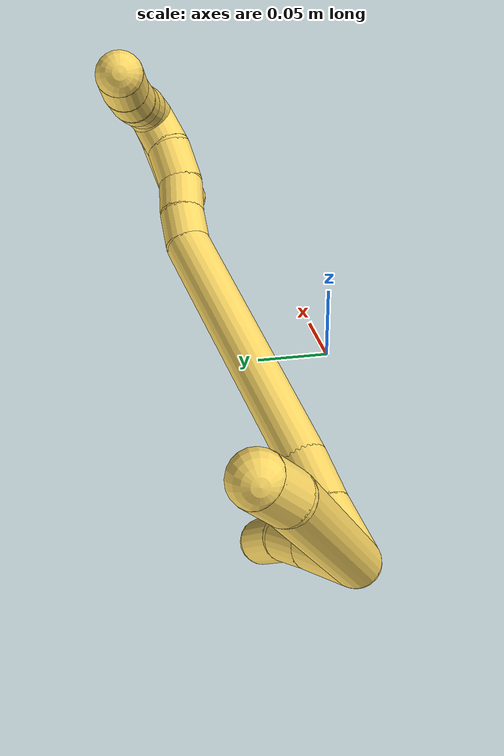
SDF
<sdf version="1.7">
 <world name="default">
  <model name="5">
   <static>0</static>
   <link name="5">
    <collision name="collision-cylinder-e_1_2_8">
     <pose>0.029607 0.025002 0.050498 -0.459725 0.483779 -0.115336</pose>
     <geometry><cylinder><radius>0.0125</radius><length>0.127305</length></cylinder></geometry>
     <surface>
      <friction><ode><mu>1.16</mu><mu2>1.16</mu2><slip1>0</slip1><slip2>0</slip2></ode></friction>
      <contact><ode><kp>1e+06</kp><kd>1</kd><max_vel>0</max_vel><min_depth>0.001</min_depth></ode></contact>
     </surface>
    </collision>
    <visual name="visual-cylinder-e_1_2_8">
     <pose>0.029607 0.025002 0.050498 -0.459725 0.483779 -0.115336</pose>
     <geometry><cylinder><radius>0.0125</radius><length>0.127305</length></cylinder></geometry>
     <material><ambient>1 0.858824 0.4 1</ambient></material>
    </visual>
    <collision name="collision-cylinder-e_2_8_6">
     <pose>0.064597 0.056957 0.108167 -0.76997 0.494383 -0.2038</pose>
     <geometry><cylinder><radius>0.0125</radius><length>0.022695</length></cylinder></geometry>
     <surface>
      <friction><ode><mu>1.16</mu><mu2>1.16</mu2><slip1>0</slip1><slip2>0</slip2></ode></friction>
      <contact><ode><kp>1e+06</kp><kd>1</kd><max_vel>0</max_vel><min_depth>0.001</min_depth></ode></contact>
     </surface>
    </collision>
    <visual name="visual-cylinder-e_2_8_6">
     <pose>0.064597 0.056957 0.108167 -0.76997 0.494383 -0.2038</pose>
     <geometry><cylinder><radius>0.0125</radius><length>0.022695</length></cylinder></geometry>
     <material><ambient>1 0.858824 0.4 1</ambient></material>
    </visual>
    <collision name="collision-cylinder-e_1_2_9">
     <pose>-0.001387 0.007662 -0.017389 -2.72657 -0.07289 0.342949</pose>
     <geometry><cylinder><radius>0.0125</radius><length>0.038104</length></cylinder></geometry>
     <surface>
      <friction><ode><mu>1.16</mu><mu2>1.16</mu2><slip1>0</slip1><slip2>0</slip2></ode></friction>
      <contact><ode><kp>1e+06</kp><kd>1</kd><max_vel>0</max_vel><min_depth>0.001</min_depth></ode></contact>
     </surface>
    </collision>
    <visual name="visual-cylinder-e_1_2_9">
     <pose>-0.001387 0.007662 -0.017389 -2.72657 -0.07289 0.342949</pose>
     <geometry><cylinder><radius>0.0125</radius><length>0.038104</length></cylinder></geometry>
     <material><ambient>1 0.858824 0.4 1</ambient></material>
    </visual>
    <collision name="collision-cylinder-e_2_9_10">
     <pose>-0.00412 0.020358 -0.046195 -2.72628 -0.107392 0.499546</pose>
     <geometry><cylinder><radius>0.0125</radius><length>0.025103</length></cylinder></geometry>
     <surface>
      <friction><ode><mu>1.16</mu><mu2>1.16</mu2><slip1>0</slip1><slip2>0</slip2></ode></friction>
      <contact><ode><kp>1e+06</kp><kd>1</kd><max_vel>0</max_vel><min_depth>0.001</min_depth></ode></contact>
     </surface>
    </collision>
    <visual name="visual-cylinder-e_2_9_10">
     <pose>-0.00412 0.020358 -0.046195 -2.72628 -0.107392 0.499546</pose>
     <geometry><cylinder><radius>0.0125</radius><length>0.025103</length></cylinder></geometry>
     <material><ambient>1 0.858824 0.4 1</ambient></material>
    </visual>
    <collision name="collision-cylinder-e_3_10_5">
     <pose>-0.011721 0.028842 -0.074566 -2.9409 -0.346975 2.09866</pose>
     <geometry><cylinder><radius>0.0125</radius><length>0.036793</length></cylinder></geometry>
     <surface>
      <friction><ode><mu>1.16</mu><mu2>1.16</mu2><slip1>0</slip1><slip2>0</slip2></ode></friction>
      <contact><ode><kp>1e+06</kp><kd>1</kd><max_vel>0</max_vel><min_depth>0.001</min_depth></ode></contact>
     </surface>
    </collision>
    <visual name="visual-cylinder-e_3_10_5">
     <pose>-0.011721 0.028842 -0.074566 -2.9409 -0.346975 2.09866</pose>
     <geometry><cylinder><radius>0.0125</radius><length>0.036793</length></cylinder></geometry>
     <material><ambient>1 0.858824 0.4 1</ambient></material>
    </visual>
    <collision name="collision-cylinder-e_1_2_11">
     <pose>0.010355 0.005782 -0.011052 -2.65958 0.692879 -1.9461</pose>
     <geometry><cylinder><radius>0.0125</radius><length>0.032423</length></cylinder></geometry>
     <surface>
      <friction><ode><mu>1.16</mu><mu2>1.16</mu2><slip1>0</slip1><slip2>0</slip2></ode></friction>
      <contact><ode><kp>1e+06</kp><kd>1</kd><max_vel>0</max_vel><min_depth>0.001</min_depth></ode></contact>
     </surface>
    </collision>
    <visual name="visual-cylinder-e_1_2_11">
     <pose>0.010355 0.005782 -0.011052 -2.65958 0.692879 -1.9461</pose>
     <geometry><cylinder><radius>0.0125</radius><length>0.032423</length></cylinder></geometry>
     <material><ambient>1 0.858824 0.4 1</ambient></material>
    </visual>
    <collision name="collision-cylinder-e_2_11_12">
     <pose>0.029992 0.015672 -0.033083 -2.78357 0.66976 -2.18257</pose>
     <geometry><cylinder><radius>0.0125</radius><length>0.029903</length></cylinder></geometry>
     <surface>
      <friction><ode><mu>1.16</mu><mu2>1.16</mu2><slip1>0</slip1><slip2>0</slip2></ode></friction>
      <contact><ode><kp>1e+06</kp><kd>1</kd><max_vel>0</max_vel><min_depth>0.001</min_depth></ode></contact>
     </surface>
    </collision>
    <visual name="visual-cylinder-e_2_11_12">
     <pose>0.029992 0.015672 -0.033083 -2.78357 0.66976 -2.18257</pose>
     <geometry><cylinder><radius>0.0125</radius><length>0.029903</length></cylinder></geometry>
     <material><ambient>1 0.858824 0.4 1</ambient></material>
    </visual>
    <collision name="collision-cylinder-e_3_12_13">
     <pose>0.089371 0.046861 -0.091747 -2.6251 0.740232 -1.94616</pose>
     <geometry><cylinder><radius>0.0125</radius><length>0.148553</length></cylinder></geometry>
     <surface>
      <friction><ode><mu>1.16</mu><mu2>1.16</mu2><slip1>0</slip1><slip2>0</slip2></ode></friction>
      <contact><ode><kp>1e+06</kp><kd>1</kd><max_vel>0</max_vel><min_depth>0.001</min_depth></ode></contact>
     </surface>
    </collision>
    <visual name="visual-cylinder-e_3_12_13">
     <pose>0.089371 0.046861 -0.091747 -2.6251 0.740232 -1.94616</pose>
     <geometry><cylinder><radius>0.0125</radius><length>0.148553</length></cylinder></geometry>
     <material><ambient>1 0.858824 0.4 1</ambient></material>
    </visual>
    <collision name="collision-cylinder-e_4_13_14">
     <pose>0.14777 0.075455 -0.145453 -2.89542 0.928854 -2.65739</pose>
     <geometry><cylinder><radius>0.0125</radius><length>0.020733</length></cylinder></geometry>
     <surface>
      <friction><ode><mu>1.16</mu><mu2>1.16</mu2><slip1>0</slip1><slip2>0</slip2></ode></friction>
      <contact><ode><kp>1e+06</kp><kd>1</kd><max_vel>0</max_vel><min_depth>0.001</min_depth></ode></contact>
     </surface>
    </collision>
    <visual name="visual-cylinder-e_4_13_14">
     <pose>0.14777 0.075455 -0.145453 -2.89542 0.928854 -2.65739</pose>
     <geometry><cylinder><radius>0.0125</radius><length>0.020733</length></cylinder></geometry>
     <material><ambient>1 0.858824 0.4 1</ambient></material>
    </visual>
    <collision name="collision-cylinder-e_5_14_15">
     <pose>0.16451 0.077165 -0.157609 -3.10933 0.941705 -3.07823</pose>
     <geometry><cylinder><radius>0.0125</radius><length>0.020869</length></cylinder></geometry>
     <surface>
      <friction><ode><mu>1.16</mu><mu2>1.16</mu2><slip1>0</slip1><slip2>0</slip2></ode></friction>
      <contact><ode><kp>1e+06</kp><kd>1</kd><max_vel>0</max_vel><min_depth>0.001</min_depth></ode></contact>
     </surface>
    </collision>
    <visual name="visual-cylinder-e_5_14_15">
     <pose>0.16451 0.077165 -0.157609 -3.10933 0.941705 -3.07823</pose>
     <geometry><cylinder><radius>0.0125</radius><length>0.020869</length></cylinder></geometry>
     <material><ambient>1 0.858824 0.4 1</ambient></material>
    </visual>
    <collision name="collision-cylinder-e_6_15_16">
     <pose>0.182904 0.080809 -0.168702 -2.53416 1.02582 -2.12595</pose>
     <geometry><cylinder><radius>0.0125</radius><length>0.023289</length></cylinder></geometry>
     <surface>
      <friction><ode><mu>1.16</mu><mu2>1.16</mu2><slip1>0</slip1><slip2>0</slip2></ode></friction>
      <contact><ode><kp>1e+06</kp><kd>1</kd><max_vel>0</max_vel><min_depth>0.001</min_depth></ode></contact>
     </surface>
    </collision>
    <visual name="visual-cylinder-e_6_15_16">
     <pose>0.182904 0.080809 -0.168702 -2.53416 1.02582 -2.12595</pose>
     <geometry><cylinder><radius>0.0125</radius><length>0.023289</length></cylinder></geometry>
     <material><ambient>1 0.858824 0.4 1</ambient></material>
    </visual>
    <collision name="collision-cylinder-e_7_16_1">
     <pose>0.201793 0.089194 -0.180186 -2.49377 0.828934 -1.8379</pose>
     <geometry><cylinder><radius>0.0125</radius><length>0.024231</length></cylinder></geometry>
     <surface>
      <friction><ode><mu>1.16</mu><mu2>1.16</mu2><slip1>0</slip1><slip2>0</slip2></ode></friction>
      <contact><ode><kp>1e+06</kp><kd>1</kd><max_vel>0</max_vel><min_depth>0.001</min_depth></ode></contact>
     </surface>
    </collision>
    <visual name="visual-cylinder-e_7_16_1">
     <pose>0.201793 0.089194 -0.180186 -2.49377 0.828934 -1.8379</pose>
     <geometry><cylinder><radius>0.0125</radius><length>0.024231</length></cylinder></geometry>
     <material><ambient>1 0.858824 0.4 1</ambient></material>
    </visual>
    <collision name="collision-cylinder-e_1_1_17">
     <pose>0.20501 0.090742 -0.196043 2.79287 -0.52232 -1.97613</pose>
     <geometry><cylinder><radius>0.0125</radius><length>0.022908</length></cylinder></geometry>
     <surface>
      <friction><ode><mu>1.16</mu><mu2>1.16</mu2><slip1>0</slip1><slip2>0</slip2></ode></friction>
      <contact><ode><kp>1e+06</kp><kd>1</kd><max_vel>0</max_vel><min_depth>0.001</min_depth></ode></contact>
     </surface>
    </collision>
    <visual name="visual-cylinder-e_1_1_17">
     <pose>0.20501 0.090742 -0.196043 2.79287 -0.52232 -1.97613</pose>
     <geometry><cylinder><radius>0.0125</radius><length>0.022908</length></cylinder></geometry>
     <material><ambient>1 0.858824 0.4 1</ambient></material>
    </visual>
    <collision name="collision-cylinder-e_2_17_18">
     <pose>0.185523 0.080705 -0.22737 2.84826 -0.53993 -2.16088</pose>
     <geometry><cylinder><radius>0.0125</radius><length>0.053582</length></cylinder></geometry>
     <surface>
      <friction><ode><mu>1.16</mu><mu2>1.16</mu2><slip1>0</slip1><slip2>0</slip2></ode></friction>
      <contact><ode><kp>1e+06</kp><kd>1</kd><max_vel>0</max_vel><min_depth>0.001</min_depth></ode></contact>
     </surface>
    </collision>
    <visual name="visual-cylinder-e_2_17_18">
     <pose>0.185523 0.080705 -0.22737 2.84826 -0.53993 -2.16088</pose>
     <geometry><cylinder><radius>0.0125</radius><length>0.053582</length></cylinder></geometry>
     <material><ambient>1 0.858824 0.4 1</ambient></material>
    </visual>
    <collision name="collision-cylinder-e_3_18_4">
     <pose>0.166577 0.070308 -0.259234 2.77806 -0.45574 -1.80122</pose>
     <geometry><cylinder><radius>0.0125</radius><length>0.023511</length></cylinder></geometry>
     <surface>
      <friction><ode><mu>1.16</mu><mu2>1.16</mu2><slip1>0</slip1><slip2>0</slip2></ode></friction>
      <contact><ode><kp>1e+06</kp><kd>1</kd><max_vel>0</max_vel><min_depth>0.001</min_depth></ode></contact>
     </surface>
    </collision>
    <visual name="visual-cylinder-e_3_18_4">
     <pose>0.166577 0.070308 -0.259234 2.77806 -0.45574 -1.80122</pose>
     <geometry><cylinder><radius>0.0125</radius><length>0.023511</length></cylinder></geometry>
     <material><ambient>1 0.858824 0.4 1</ambient></material>
    </visual>
    <collision name="collision-cylinder-e_1_1_19">
     <pose>0.213095 0.096796 -0.17737 -0.277608 0.239339 -0.033594</pose>
     <geometry><cylinder><radius>0.0125</radius><length>0.02</length></cylinder></geometry>
     <surface>
      <friction><ode><mu>1.16</mu><mu2>1.16</mu2><slip1>0</slip1><slip2>0</slip2></ode></friction>
      <contact><ode><kp>1e+06</kp><kd>1</kd><max_vel>0</max_vel><min_depth>0.001</min_depth></ode></contact>
     </surface>
    </collision>
    <visual name="visual-cylinder-e_1_1_19">
     <pose>0.213095 0.096796 -0.17737 -0.277608 0.239339 -0.033594</pose>
     <geometry><cylinder><radius>0.0125</radius><length>0.02</length></cylinder></geometry>
     <material><ambient>1 0.858824 0.4 1</ambient></material>
    </visual>
    <collision name="collision-cylinder-e_2_19_20">
     <pose>0.215898 0.101495 -0.158247 -0.205257 0.043244 -0.004454</pose>
     <geometry><cylinder><radius>0.0125</radius><length>0.02</length></cylinder></geometry>
     <surface>
      <friction><ode><mu>1.16</mu><mu2>1.16</mu2><slip1>0</slip1><slip2>0</slip2></ode></friction>
      <contact><ode><kp>1e+06</kp><kd>1</kd><max_vel>0</max_vel><min_depth>0.001</min_depth></ode></contact>
     </surface>
    </collision>
    <visual name="visual-cylinder-e_2_19_20">
     <pose>0.215898 0.101495 -0.158247 -0.205257 0.043244 -0.004454</pose>
     <geometry><cylinder><radius>0.0125</radius><length>0.02</length></cylinder></geometry>
     <material><ambient>1 0.858824 0.4 1</ambient></material>
    </visual>
    <collision name="collision-cylinder-e_3_20_21">
     <pose>0.21697 0.105151 -0.138618 -0.163059 0.063992 -0.005231</pose>
     <geometry><cylinder><radius>0.0125</radius><length>0.02</length></cylinder></geometry>
     <surface>
      <friction><ode><mu>1.16</mu><mu2>1.16</mu2><slip1>0</slip1><slip2>0</slip2></ode></friction>
      <contact><ode><kp>1e+06</kp><kd>1</kd><max_vel>0</max_vel><min_depth>0.001</min_depth></ode></contact>
     </surface>
    </collision>
    <visual name="visual-cylinder-e_3_20_21">
     <pose>0.21697 0.105151 -0.138618 -0.163059 0.063992 -0.005231</pose>
     <geometry><cylinder><radius>0.0125</radius><length>0.02</length></cylinder></geometry>
     <material><ambient>1 0.858824 0.4 1</ambient></material>
    </visual>
    <collision name="collision-cylinder-e_4_21_22">
     <pose>0.219915 0.10902 -0.119304 -0.233182 0.232643 -0.02737</pose>
     <geometry><cylinder><radius>0.0125</radius><length>0.02</length></cylinder></geometry>
     <surface>
      <friction><ode><mu>1.16</mu><mu2>1.16</mu2><slip1>0</slip1><slip2>0</slip2></ode></friction>
      <contact><ode><kp>1e+06</kp><kd>1</kd><max_vel>0</max_vel><min_depth>0.001</min_depth></ode></contact>
     </surface>
    </collision>
    <visual name="visual-cylinder-e_4_21_22">
     <pose>0.219915 0.10902 -0.119304 -0.233182 0.232643 -0.02737</pose>
     <geometry><cylinder><radius>0.0125</radius><length>0.02</length></cylinder></geometry>
     <material><ambient>1 0.858824 0.4 1</ambient></material>
    </visual>
    <collision name="collision-cylinder-e_5_22_3">
     <pose>0.22537 0.11298 -0.100502 -0.181335 0.320477 -0.029387</pose>
     <geometry><cylinder><radius>0.0125</radius><length>0.02</length></cylinder></geometry>
     <surface>
      <friction><ode><mu>1.16</mu><mu2>1.16</mu2><slip1>0</slip1><slip2>0</slip2></ode></friction>
      <contact><ode><kp>1e+06</kp><kd>1</kd><max_vel>0</max_vel><min_depth>0.001</min_depth></ode></contact>
     </surface>
    </collision>
    <visual name="visual-cylinder-e_5_22_3">
     <pose>0.22537 0.11298 -0.100502 -0.181335 0.320477 -0.029387</pose>
     <geometry><cylinder><radius>0.0125</radius><length>0.02</length></cylinder></geometry>
     <material><ambient>1 0.858824 0.4 1</ambient></material>
    </visual>
    <collision name="collision-sphere-3">
     <pose>0.228521 0.114691 -0.091166 0 -0 0</pose>
     <geometry><sphere><radius>0.0125</radius></sphere></geometry>
     <surface>
      <friction><ode><mu>1.16</mu><mu2>1.16</mu2><slip1>0</slip1><slip2>0</slip2></ode></friction>
      <contact><ode><kp>1e+06</kp><kd>1</kd><max_vel>0</max_vel><min_depth>0.001</min_depth></ode></contact>
     </surface>
    </collision>
    <visual name="visual-sphere-3">
     <pose>0.228521 0.114691 -0.091166 0 -0 0</pose>
     <geometry><sphere><radius>0.0125</radius></sphere></geometry>
     <material><ambient>1 0.858824 0.4 1</ambient></material>
    </visual>
    <collision name="collision-sphere-22">
     <pose>0.22222 0.111268 -0.109837 0 -0 0</pose>
     <geometry><sphere><radius>0.0125</radius></sphere></geometry>
     <surface>
      <friction><ode><mu>1.16</mu><mu2>1.16</mu2><slip1>0</slip1><slip2>0</slip2></ode></friction>
      <contact><ode><kp>1e+06</kp><kd>1</kd><max_vel>0</max_vel><min_depth>0.001</min_depth></ode></contact>
     </surface>
    </collision>
    <visual name="visual-sphere-22">
     <pose>0.22222 0.111268 -0.109837 0 -0 0</pose>
     <geometry><sphere><radius>0.0125</radius></sphere></geometry>
     <material><ambient>1 0.858824 0.4 1</ambient></material>
    </visual>
    <collision name="collision-sphere-21">
     <pose>0.217609 0.106771 -0.128771 0 -0 0</pose>
     <geometry><sphere><radius>0.0125</radius></sphere></geometry>
     <surface>
      <friction><ode><mu>1.16</mu><mu2>1.16</mu2><slip1>0</slip1><slip2>0</slip2></ode></friction>
      <contact><ode><kp>1e+06</kp><kd>1</kd><max_vel>0</max_vel><min_depth>0.001</min_depth></ode></contact>
     </surface>
    </collision>
    <visual name="visual-sphere-21">
     <pose>0.217609 0.106771 -0.128771 0 -0 0</pose>
     <geometry><sphere><radius>0.0125</radius></sphere></geometry>
     <material><ambient>1 0.858824 0.4 1</ambient></material>
    </visual>
    <collision name="collision-sphere-20">
     <pose>0.21633 0.103531 -0.148466 0 -0 0</pose>
     <geometry><sphere><radius>0.0125</radius></sphere></geometry>
     <surface>
      <friction><ode><mu>1.16</mu><mu2>1.16</mu2><slip1>0</slip1><slip2>0</slip2></ode></friction>
      <contact><ode><kp>1e+06</kp><kd>1</kd><max_vel>0</max_vel><min_depth>0.001</min_depth></ode></contact>
     </surface>
    </collision>
    <visual name="visual-sphere-20">
     <pose>0.21633 0.103531 -0.148466 0 -0 0</pose>
     <geometry><sphere><radius>0.0125</radius></sphere></geometry>
     <material><ambient>1 0.858824 0.4 1</ambient></material>
    </visual>
    <collision name="collision-sphere-19">
     <pose>0.215466 0.099458 -0.168027 0 -0 0</pose>
     <geometry><sphere><radius>0.0125</radius></sphere></geometry>
     <surface>
      <friction><ode><mu>1.16</mu><mu2>1.16</mu2><slip1>0</slip1><slip2>0</slip2></ode></friction>
      <contact><ode><kp>1e+06</kp><kd>1</kd><max_vel>0</max_vel><min_depth>0.001</min_depth></ode></contact>
     </surface>
    </collision>
    <visual name="visual-sphere-19">
     <pose>0.215466 0.099458 -0.168027 0 -0 0</pose>
     <geometry><sphere><radius>0.0125</radius></sphere></geometry>
     <material><ambient>1 0.858824 0.4 1</ambient></material>
    </visual>
    <collision name="collision-sphere-5">
     <pose>-0.017977 0.032291 -0.091519 0 -0 0</pose>
     <geometry><sphere><radius>0.0125</radius></sphere></geometry>
     <surface>
      <friction><ode><mu>1.16</mu><mu2>1.16</mu2><slip1>0</slip1><slip2>0</slip2></ode></friction>
      <contact><ode><kp>1e+06</kp><kd>1</kd><max_vel>0</max_vel><min_depth>0.001</min_depth></ode></contact>
     </surface>
    </collision>
    <visual name="visual-sphere-5">
     <pose>-0.017977 0.032291 -0.091519 0 -0 0</pose>
     <geometry><sphere><radius>0.0125</radius></sphere></geometry>
     <material><ambient>1 0.858824 0.4 1</ambient></material>
    </visual>
    <collision name="collision-sphere-10">
     <pose>-0.005466 0.025394 -0.057614 0 -0 0</pose>
     <geometry><sphere><radius>0.0125</radius></sphere></geometry>
     <surface>
      <friction><ode><mu>1.16</mu><mu2>1.16</mu2><slip1>0</slip1><slip2>0</slip2></ode></friction>
      <contact><ode><kp>1e+06</kp><kd>1</kd><max_vel>0</max_vel><min_depth>0.001</min_depth></ode></contact>
     </surface>
    </collision>
    <visual name="visual-sphere-10">
     <pose>-0.005466 0.025394 -0.057614 0 -0 0</pose>
     <geometry><sphere><radius>0.0125</radius></sphere></geometry>
     <material><ambient>1 0.858824 0.4 1</ambient></material>
    </visual>
    <collision name="collision-sphere-6">
     <pose>0.069982 0.06391 0.115338 0 -0 0</pose>
     <geometry><sphere><radius>0.0125</radius></sphere></geometry>
     <surface>
      <friction><ode><mu>1.16</mu><mu2>1.16</mu2><slip1>0</slip1><slip2>0</slip2></ode></friction>
      <contact><ode><kp>1e+06</kp><kd>1</kd><max_vel>0</max_vel><min_depth>0.001</min_depth></ode></contact>
     </surface>
    </collision>
    <visual name="visual-sphere-6">
     <pose>0.069982 0.06391 0.115338 0 -0 0</pose>
     <geometry><sphere><radius>0.0125</radius></sphere></geometry>
     <material><ambient>1 0.858824 0.4 1</ambient></material>
    </visual>
    <collision name="collision-sphere-9">
     <pose>-0.002775 0.015323 -0.034777 0 -0 0</pose>
     <geometry><sphere><radius>0.0125</radius></sphere></geometry>
     <surface>
      <friction><ode><mu>1.16</mu><mu2>1.16</mu2><slip1>0</slip1><slip2>0</slip2></ode></friction>
      <contact><ode><kp>1e+06</kp><kd>1</kd><max_vel>0</max_vel><min_depth>0.001</min_depth></ode></contact>
     </surface>
    </collision>
    <visual name="visual-sphere-9">
     <pose>-0.002775 0.015323 -0.034777 0 -0 0</pose>
     <geometry><sphere><radius>0.0125</radius></sphere></geometry>
     <material><ambient>1 0.858824 0.4 1</ambient></material>
    </visual>
    <collision name="collision-sphere-2">
     <geometry><sphere><radius>0.0125</radius></sphere></geometry>
     <surface>
      <friction><ode><mu>1.16</mu><mu2>1.16</mu2><slip1>0</slip1><slip2>0</slip2></ode></friction>
      <contact><ode><kp>1e+06</kp><kd>1</kd><max_vel>0</max_vel><min_depth>0.001</min_depth></ode></contact>
     </surface>
    </collision>
    <visual name="visual-sphere-2">
     <geometry><sphere><radius>0.0125</radius></sphere></geometry>
     <material><ambient>1 0.858824 0.4 1</ambient></material>
    </visual>
    <collision name="collision-sphere-8">
     <pose>0.059213 0.050003 0.100995 0 -0 0</pose>
     <geometry><sphere><radius>0.0125</radius></sphere></geometry>
     <surface>
      <friction><ode><mu>1.16</mu><mu2>1.16</mu2><slip1>0</slip1><slip2>0</slip2></ode></friction>
      <contact><ode><kp>1e+06</kp><kd>1</kd><max_vel>0</max_vel><min_depth>0.001</min_depth></ode></contact>
     </surface>
    </collision>
    <visual name="visual-sphere-8">
     <pose>0.059213 0.050003 0.100995 0 -0 0</pose>
     <geometry><sphere><radius>0.0125</radius></sphere></geometry>
     <material><ambient>1 0.858824 0.4 1</ambient></material>
    </visual>
    <collision name="collision-sphere-11">
     <pose>0.02071 0.011564 -0.022104 0 -0 0</pose>
     <geometry><sphere><radius>0.0125</radius></sphere></geometry>
     <surface>
      <friction><ode><mu>1.16</mu><mu2>1.16</mu2><slip1>0</slip1><slip2>0</slip2></ode></friction>
      <contact><ode><kp>1e+06</kp><kd>1</kd><max_vel>0</max_vel><min_depth>0.001</min_depth></ode></contact>
     </surface>
    </collision>
    <visual name="visual-sphere-11">
     <pose>0.02071 0.011564 -0.022104 0 -0 0</pose>
     <geometry><sphere><radius>0.0125</radius></sphere></geometry>
     <material><ambient>1 0.858824 0.4 1</ambient></material>
    </visual>
    <collision name="collision-sphere-12">
     <pose>0.039274 0.019779 -0.044061 0 -0 0</pose>
     <geometry><sphere><radius>0.0125</radius></sphere></geometry>
     <surface>
      <friction><ode><mu>1.16</mu><mu2>1.16</mu2><slip1>0</slip1><slip2>0</slip2></ode></friction>
      <contact><ode><kp>1e+06</kp><kd>1</kd><max_vel>0</max_vel><min_depth>0.001</min_depth></ode></contact>
     </surface>
    </collision>
    <visual name="visual-sphere-12">
     <pose>0.039274 0.019779 -0.044061 0 -0 0</pose>
     <geometry><sphere><radius>0.0125</radius></sphere></geometry>
     <material><ambient>1 0.858824 0.4 1</ambient></material>
    </visual>
    <collision name="collision-sphere-13">
     <pose>0.139467 0.073942 -0.139433 0 -0 0</pose>
     <geometry><sphere><radius>0.0125</radius></sphere></geometry>
     <surface>
      <friction><ode><mu>1.16</mu><mu2>1.16</mu2><slip1>0</slip1><slip2>0</slip2></ode></friction>
      <contact><ode><kp>1e+06</kp><kd>1</kd><max_vel>0</max_vel><min_depth>0.001</min_depth></ode></contact>
     </surface>
    </collision>
    <visual name="visual-sphere-13">
     <pose>0.139467 0.073942 -0.139433 0 -0 0</pose>
     <geometry><sphere><radius>0.0125</radius></sphere></geometry>
     <material><ambient>1 0.858824 0.4 1</ambient></material>
    </visual>
    <collision name="collision-sphere-14">
     <pose>0.156073 0.076967 -0.151472 0 -0 0</pose>
     <geometry><sphere><radius>0.0125</radius></sphere></geometry>
     <surface>
      <friction><ode><mu>1.16</mu><mu2>1.16</mu2><slip1>0</slip1><slip2>0</slip2></ode></friction>
      <contact><ode><kp>1e+06</kp><kd>1</kd><max_vel>0</max_vel><min_depth>0.001</min_depth></ode></contact>
     </surface>
    </collision>
    <visual name="visual-sphere-14">
     <pose>0.156073 0.076967 -0.151472 0 -0 0</pose>
     <geometry><sphere><radius>0.0125</radius></sphere></geometry>
     <material><ambient>1 0.858824 0.4 1</ambient></material>
    </visual>
    <collision name="collision-sphere-15">
     <pose>0.172946 0.077363 -0.163745 0 -0 0</pose>
     <geometry><sphere><radius>0.0125</radius></sphere></geometry>
     <surface>
      <friction><ode><mu>1.16</mu><mu2>1.16</mu2><slip1>0</slip1><slip2>0</slip2></ode></friction>
      <contact><ode><kp>1e+06</kp><kd>1</kd><max_vel>0</max_vel><min_depth>0.001</min_depth></ode></contact>
     </surface>
    </collision>
    <visual name="visual-sphere-15">
     <pose>0.172946 0.077363 -0.163745 0 -0 0</pose>
     <geometry><sphere><radius>0.0125</radius></sphere></geometry>
     <material><ambient>1 0.858824 0.4 1</ambient></material>
    </visual>
    <collision name="collision-sphere-16">
     <pose>0.192861 0.084254 -0.173659 0 -0 0</pose>
     <geometry><sphere><radius>0.0125</radius></sphere></geometry>
     <surface>
      <friction><ode><mu>1.16</mu><mu2>1.16</mu2><slip1>0</slip1><slip2>0</slip2></ode></friction>
      <contact><ode><kp>1e+06</kp><kd>1</kd><max_vel>0</max_vel><min_depth>0.001</min_depth></ode></contact>
     </surface>
    </collision>
    <visual name="visual-sphere-16">
     <pose>0.192861 0.084254 -0.173659 0 -0 0</pose>
     <geometry><sphere><radius>0.0125</radius></sphere></geometry>
     <material><ambient>1 0.858824 0.4 1</ambient></material>
    </visual>
    <collision name="collision-sphere-1">
     <pose>0.210724 0.094134 -0.186713 0 -0 0</pose>
     <geometry><sphere><radius>0.0125</radius></sphere></geometry>
     <surface>
      <friction><ode><mu>1.16</mu><mu2>1.16</mu2><slip1>0</slip1><slip2>0</slip2></ode></friction>
      <contact><ode><kp>1e+06</kp><kd>1</kd><max_vel>0</max_vel><min_depth>0.001</min_depth></ode></contact>
     </surface>
    </collision>
    <visual name="visual-sphere-1">
     <pose>0.210724 0.094134 -0.186713 0 -0 0</pose>
     <geometry><sphere><radius>0.0125</radius></sphere></geometry>
     <material><ambient>1 0.858824 0.4 1</ambient></material>
    </visual>
    <collision name="collision-sphere-18">
     <pose>0.171751 0.074061 -0.249368 0 -0 0</pose>
     <geometry><sphere><radius>0.0125</radius></sphere></geometry>
     <surface>
      <friction><ode><mu>1.16</mu><mu2>1.16</mu2><slip1>0</slip1><slip2>0</slip2></ode></friction>
      <contact><ode><kp>1e+06</kp><kd>1</kd><max_vel>0</max_vel><min_depth>0.001</min_depth></ode></contact>
     </surface>
    </collision>
    <visual name="visual-sphere-18">
     <pose>0.171751 0.074061 -0.249368 0 -0 0</pose>
     <geometry><sphere><radius>0.0125</radius></sphere></geometry>
     <material><ambient>1 0.858824 0.4 1</ambient></material>
    </visual>
    <collision name="collision-sphere-17">
     <pose>0.199296 0.08735 -0.205372 0 -0 0</pose>
     <geometry><sphere><radius>0.0125</radius></sphere></geometry>
     <surface>
      <friction><ode><mu>1.16</mu><mu2>1.16</mu2><slip1>0</slip1><slip2>0</slip2></ode></friction>
      <contact><ode><kp>1e+06</kp><kd>1</kd><max_vel>0</max_vel><min_depth>0.001</min_depth></ode></contact>
     </surface>
    </collision>
    <visual name="visual-sphere-17">
     <pose>0.199296 0.08735 -0.205372 0 -0 0</pose>
     <geometry><sphere><radius>0.0125</radius></sphere></geometry>
     <material><ambient>1 0.858824 0.4 1</ambient></material>
    </visual>
    <collision name="collision-sphere-4">
     <pose>0.161403 0.066555 -0.269099 0 -0 0</pose>
     <geometry><sphere><radius>0.0125</radius></sphere></geometry>
     <surface>
      <friction><ode><mu>1.16</mu><mu2>1.16</mu2><slip1>0</slip1><slip2>0</slip2></ode></friction>
      <contact><ode><kp>1e+06</kp><kd>1</kd><max_vel>0</max_vel><min_depth>0.001</min_depth></ode></contact>
     </surface>
    </collision>
    <visual name="visual-sphere-4">
     <pose>0.161403 0.066555 -0.269099 0 -0 0</pose>
     <geometry><sphere><radius>0.0125</radius></sphere></geometry>
     <material><ambient>1 0.858824 0.4 1</ambient></material>
    </visual>
    <inertial>
     <pose>0.100241 0.052986 -0.082544 0 -0 0</pose>
     <mass>0.75</mass>
     <inertia>
      <ixx>-0.000126</ixx>
      <ixy>0</ixy>
      <ixz>0</ixz>
      <iyy>0.000154</iyy>
      <iyz>0</iyz>
      <izz>-0.00046</izz>
     </inertia>
    </inertial>
   </link>
   <pose>-0.308161 0.066805 0.055991 0.204511 -1.2328 -0.292407</pose>
  </model>
 </world>
</sdf>
